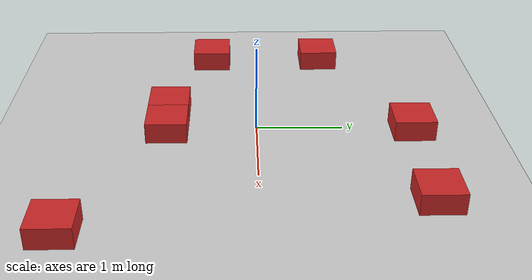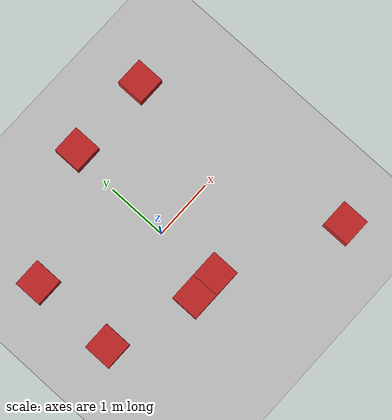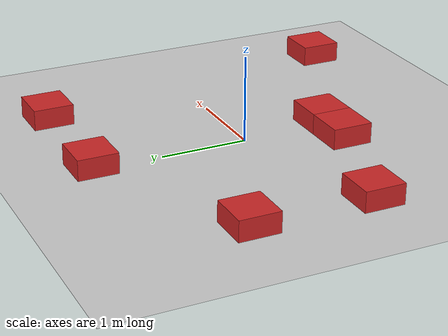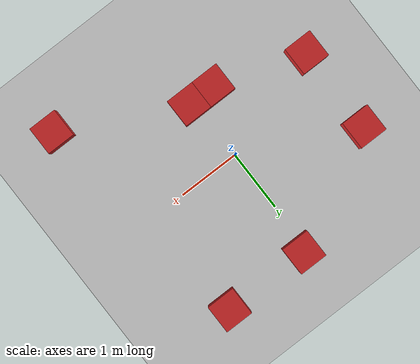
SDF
<sdf version="1.6">
 <world name="default">
  <include><uri>model://ground_plane</uri></include>
  <include><uri>model://sun</uri></include>
  <scene><shadows>false</shadows></scene>
  <physics type="ode">
   <real_time_update_rate>1000.0</real_time_update_rate>
   <max_step_size>0.001</max_step_size>
   <real_time_factor>1</real_time_factor>
   <ode>
    <solver>
     <type>quick</type>
     <iters>150</iters>
     <precon_iters>0</precon_iters>
     <sor>1.400000</sor>
     <use_dynamic_moi_rescaling>1</use_dynamic_moi_rescaling>
    </solver>
    <constraints>
     <cfm>0.00001</cfm>
     <erp>0.2</erp>
     <contact_max_correcting_vel>2000.000000</contact_max_correcting_vel>
     <contact_surface_layer>0.01000</contact_surface_layer>
    </constraints>
   </ode>
  </physics>
  <model name="red_cube_1">
   <static>true</static>
   <pose>1.965 -1.965 0 0 0 0</pose>
   <link name="link">
    <collision name="collision"><geometry><box><size>0.47 0.47 0.47</size></box></geometry></collision>
    <visual name="visual">
     <geometry><box><size>0.47 0.47 0.47</size></box></geometry>
     <material>
      <script><name>Gazebo/Red</name><uri>file://media/materials/scripts/gazebo.material</uri></script>
     </material>
    </visual>
   </link>
  </model>
  <model name="red_cube_2">
   <static>true</static>
   <pose>0.08 -1.025 0 0 0 0</pose>
   <link name="link">
    <collision name="collision"><geometry><box><size>0.47 0.47 0.47</size></box></geometry></collision>
    <visual name="visual">
     <geometry><box><size>0.47 0.47 0.47</size></box></geometry>
     <material>
      <script><name>Gazebo/Red</name><uri>file://media/materials/scripts/gazebo.material</uri></script>
     </material>
    </visual>
   </link>
  </model>
  <model name="red_cube_3">
   <static>true</static>
   <pose>0.08 1.795 0 0 0 0</pose>
   <link name="link">
    <collision name="collision"><geometry><box><size>0.47 0.47 0.47</size></box></geometry></collision>
    <visual name="visual">
     <geometry><box><size>0.47 0.47 0.47</size></box></geometry>
     <material>
      <script><name>Gazebo/Red</name><uri>file://media/materials/scripts/gazebo.material</uri></script>
     </material>
    </visual>
   </link>
  </model>
  <model name="red_cube_4">
   <static>true</static>
   <pose>1.495 1.795 0 0 0 0</pose>
   <link name="link">
    <collision name="collision"><geometry><box><size>0.47 0.47 0.47</size></box></geometry></collision>
    <visual name="visual">
     <geometry><box><size>0.47 0.47 0.47</size></box></geometry>
     <material>
      <script><name>Gazebo/Red</name><uri>file://media/materials/scripts/gazebo.material</uri></script>
     </material>
    </visual>
   </link>
  </model>
  <model name="red_cube_5">
   <static>true</static>
   <pose>-1.795 0.855 0 0 0 0</pose>
   <link name="link">
    <collision name="collision"><geometry><box><size>0.47 0.47 0.47</size></box></geometry></collision>
    <visual name="visual">
     <geometry><box><size>0.47 0.47 0.47</size></box></geometry>
     <material>
      <script><name>Gazebo/Red</name><uri>file://media/materials/scripts/gazebo.material</uri></script>
     </material>
    </visual>
   </link>
  </model>
  <model name="red_cube_6">
   <static>true</static>
   <pose>-1.795 -0.555 0 0 0 0</pose>
   <link name="link">
    <collision name="collision"><geometry><box><size>0.47 0.47 0.47</size></box></geometry></collision>
    <visual name="visual">
     <geometry><box><size>0.47 0.47 0.47</size></box></geometry>
     <material>
      <script><name>Gazebo/Red</name><uri>file://media/materials/scripts/gazebo.material</uri></script>
     </material>
    </visual>
   </link>
  </model>
  <model name="red_cube_7">
   <static>true</static>
   <pose>-0.38 -1.025 0 0 0 0</pose>
   <link name="link">
    <collision name="collision"><geometry><box><size>0.47 0.47 0.47</size></box></geometry></collision>
    <visual name="visual">
     <geometry><box><size>0.47 0.47 0.47</size></box></geometry>
     <material>
      <script><name>Gazebo/Red</name><uri>file://media/materials/scripts/gazebo.material</uri></script>
     </material>
    </visual>
   </link>
  </model>
 </world>
</sdf>
